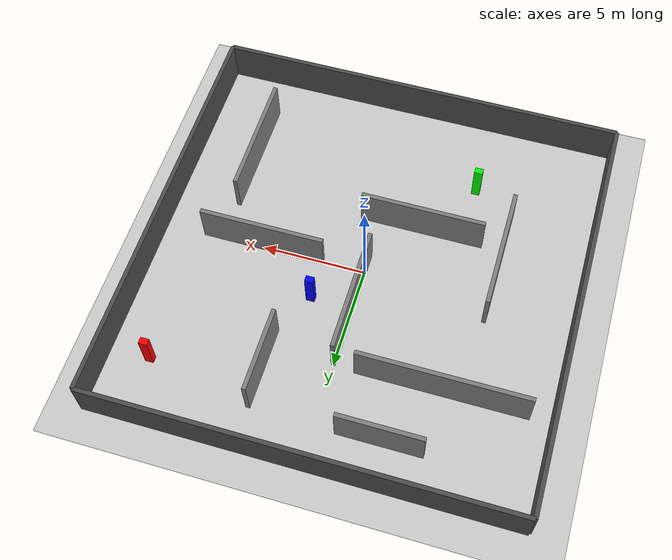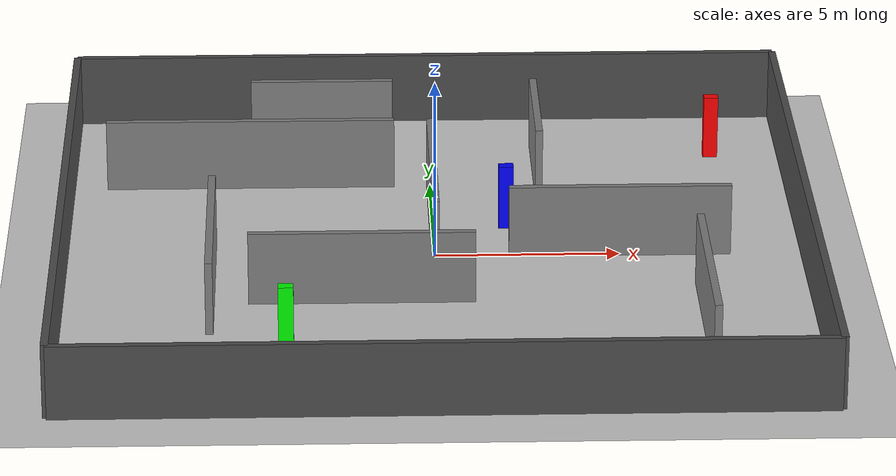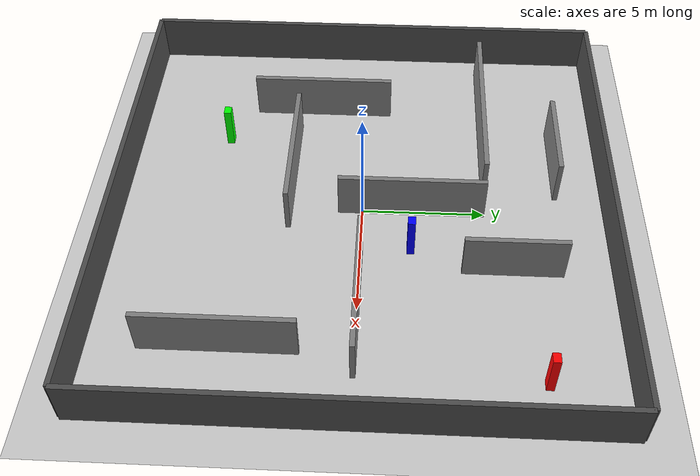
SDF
<?xml version="1.0"?>
<sdf version="1.9">
  <world name="maze">
    <physics name="1ms" type="ignored">
      <max_step_size>0.001</max_step_size>
      <real_time_factor>1.0</real_time_factor>
    </physics>
    <plugin filename="gz-sim-physics-system" name="gz::sim::systems::Physics"/>
    <plugin filename="gz-sim-scene-broadcaster-system" name="gz::sim::systems::SceneBroadcaster"/>
    <plugin filename="gz-sim-user-commands-system" name="gz::sim::systems::UserCommands"/>
    <plugin filename="gz-sim-sensors-system" name="gz::sim::systems::Sensors">
      <render_engine>ogre2</render_engine>
    </plugin>

    <!-- Ground -->
    <model name="ground_plane">
      <static>true</static>
      <link name="link">
        <collision name="collision">
          <geometry><plane><normal>0 0 1</normal><size>100 100</size></plane></geometry>
        </collision>
        <visual name="visual">
          <geometry><plane><normal>0 0 1</normal><size>100 100</size></plane></geometry>
          <material><ambient>0.8 0.8 0.8 1</ambient><diffuse>0.8 0.8 0.8 1</diffuse></material>
        </visual>
      </link>
    </model>

    <light type="directional" name="sun">
      <cast_shadows>true</cast_shadows>
      <pose>0 0 10 0 0 0</pose>
      <diffuse>0.8 0.8 0.8 1</diffuse>
      <specular>0.2 0.2 0.2 1</specular>
      <direction>-0.5 0.1 -0.9</direction>
    </light>

    <!-- Maze Walls - 20x20m maze, 1.5m corridors, 2m high -->
    <!-- Outer boundary -->
    <model name="wall_outer_north"><static>true</static><pose>0 10 1 0 0 0</pose><link name="link"><collision name="c"><geometry><box><size>20 0.2 2</size></box></geometry></collision><visual name="v"><geometry><box><size>20 0.2 2</size></box></geometry><material><diffuse>0.3 0.3 0.3 1</diffuse></material></visual></link></model>
    <model name="wall_outer_south"><static>true</static><pose>0 -10 1 0 0 0</pose><link name="link"><collision name="c"><geometry><box><size>20 0.2 2</size></box></geometry></collision><visual name="v"><geometry><box><size>20 0.2 2</size></box></geometry><material><diffuse>0.3 0.3 0.3 1</diffuse></material></visual></link></model>
    <model name="wall_outer_east"><static>true</static><pose>10 0 1 0 0 0</pose><link name="link"><collision name="c"><geometry><box><size>0.2 20 2</size></box></geometry></collision><visual name="v"><geometry><box><size>0.2 20 2</size></box></geometry><material><diffuse>0.3 0.3 0.3 1</diffuse></material></visual></link></model>
    <model name="wall_outer_west"><static>true</static><pose>-10 0 1 0 0 0</pose><link name="link"><collision name="c"><geometry><box><size>0.2 20 2</size></box></geometry></collision><visual name="v"><geometry><box><size>0.2 20 2</size></box></geometry><material><diffuse>0.3 0.3 0.3 1</diffuse></material></visual></link></model>

    <!-- Internal maze walls (simplified maze pattern) -->
    <model name="maze_wall_1"><static>true</static><pose>-5 5 1 0 0 0</pose><link name="link"><collision name="c"><geometry><box><size>8 0.2 2</size></box></geometry></collision><visual name="v"><geometry><box><size>8 0.2 2</size></box></geometry><material><diffuse>0.5 0.5 0.5 1</diffuse></material></visual></link></model>
    <model name="maze_wall_2"><static>true</static><pose>0 2 1 0 0 0</pose><link name="link"><collision name="c"><geometry><box><size>0.2 6 2</size></box></geometry></collision><visual name="v"><geometry><box><size>0.2 6 2</size></box></geometry><material><diffuse>0.5 0.5 0.5 1</diffuse></material></visual></link></model>
    <model name="maze_wall_3"><static>true</static><pose>5 0 1 0 0 0</pose><link name="link"><collision name="c"><geometry><box><size>6 0.2 2</size></box></geometry></collision><visual name="v"><geometry><box><size>6 0.2 2</size></box></geometry><material><diffuse>0.5 0.5 0.5 1</diffuse></material></visual></link></model>
    <model name="maze_wall_4"><static>true</static><pose>-2 -3 1 0 0 0</pose><link name="link"><collision name="c"><geometry><box><size>6 0.2 2</size></box></geometry></collision><visual name="v"><geometry><box><size>6 0.2 2</size></box></geometry><material><diffuse>0.5 0.5 0.5 1</diffuse></material></visual></link></model>
    <model name="maze_wall_5"><static>true</static><pose>-6 -2 1 0 0 0</pose><link name="link"><collision name="c"><geometry><box><size>0.2 6 2</size></box></geometry></collision><visual name="v"><geometry><box><size>0.2 6 2</size></box></geometry><material><diffuse>0.5 0.5 0.5 1</diffuse></material></visual></link></model>
    <model name="maze_wall_6"><static>true</static><pose>3 6 1 0 0 0</pose><link name="link"><collision name="c"><geometry><box><size>0.2 4 2</size></box></geometry></collision><visual name="v"><geometry><box><size>0.2 4 2</size></box></geometry><material><diffuse>0.5 0.5 0.5 1</diffuse></material></visual></link></model>
    <model name="maze_wall_7"><static>true</static><pose>-3 8 1 0 0 0</pose><link name="link"><collision name="c"><geometry><box><size>4 0.2 2</size></box></geometry></collision><visual name="v"><geometry><box><size>4 0.2 2</size></box></geometry><material><diffuse>0.5 0.5 0.5 1</diffuse></material></visual></link></model>
    <model name="maze_wall_8"><static>true</static><pose>7 -5 1 0 0 0</pose><link name="link"><collision name="c"><geometry><box><size>0.2 6 2</size></box></geometry></collision><visual name="v"><geometry><box><size>0.2 6 2</size></box></geometry><material><diffuse>0.5 0.5 0.5 1</diffuse></material></visual></link></model>

    <!-- Person models (using simple actor boxes for simulation, replace with actual human mesh) -->
    <model name="person_1"><static>true</static><pose>2 2 0.9 0 0 0</pose>
      <link name="link"><collision name="c"><geometry><box><size>0.4 0.3 1.8</size></box></geometry></collision>
      <visual name="v"><geometry><box><size>0.4 0.3 1.8</size></box></geometry><material><diffuse>0 0 1 1</diffuse></material></visual></link>
    </model>
    <model name="person_2"><static>true</static><pose>-4 -6 0.9 0 0 0</pose>
      <link name="link"><collision name="c"><geometry><box><size>0.4 0.3 1.8</size></box></geometry></collision>
      <visual name="v"><geometry><box><size>0.4 0.3 1.8</size></box></geometry><material><diffuse>0 1 0 1</diffuse></material></visual></link>
    </model>
    <model name="person_3"><static>true</static><pose>8 7 0.9 0 0 0</pose>
      <link name="link"><collision name="c"><geometry><box><size>0.4 0.3 1.8</size></box></geometry></collision>
      <visual name="v"><geometry><box><size>0.4 0.3 1.8</size></box></geometry><material><diffuse>1 0 0 1</diffuse></material></visual></link>
    </model>

  </world>
</sdf>
